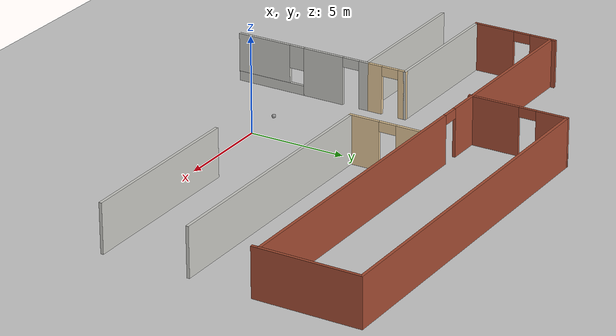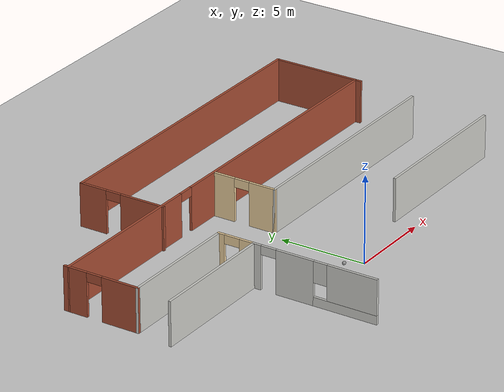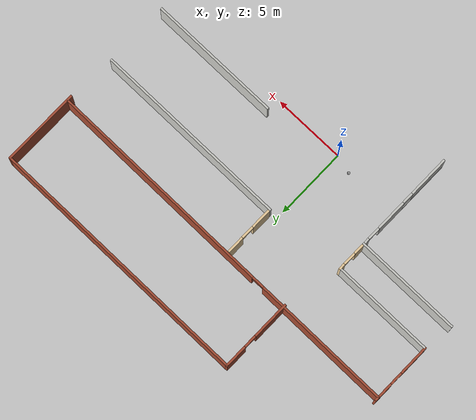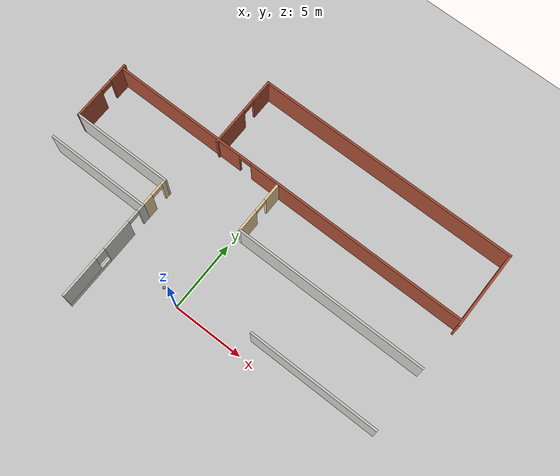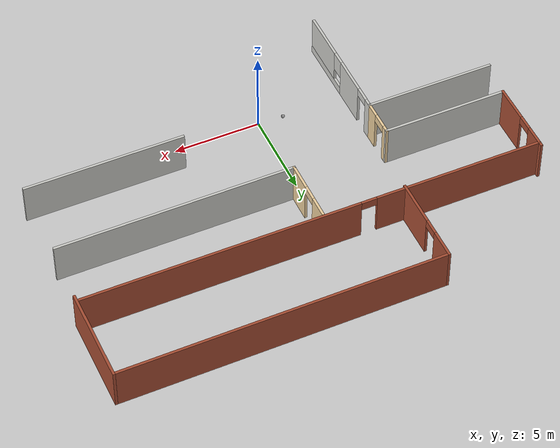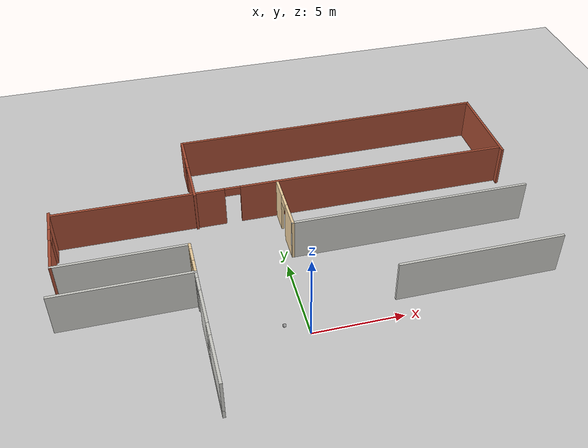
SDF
<sdf version="1.7">
 <world name="default">
  <model name="ground_plane">
   <static>1</static>
   <link name="link">
    <collision name="collision">
     <geometry><plane><normal>0 0 1</normal><size>100 100</size></plane></geometry>
     <surface><friction><ode><mu>100</mu><mu2>50</mu2></ode></friction></surface>
    </collision>
    <visual name="visual">
     <cast_shadows>0</cast_shadows>
     <geometry><plane><normal>0 0 1</normal><size>100 100</size></plane></geometry>
     <material>
      <script><uri>file://media/materials/scripts/gazebo.material</uri><name>Gazebo/Grey</name></script>
     </material>
    </visual>
   </link>
  </model>
  <model name="my_ball">
   <link name="link_0">
    <inertial>
     <mass>1</mass>
     <inertia><ixx>0.1</ixx><ixy>0</ixy><ixz>0</ixz><iyy>0.1</iyy><iyz>0</iyz><izz>0.1</izz></inertia>
    </inertial>
    <visual name="visual">
     <geometry><sphere><radius>0.1</radius></sphere></geometry>
     <material>
      <lighting>1</lighting>
      <script><uri>file://media/materials/scripts/gazebo.material</uri><name>Gazebo/Grey</name></script>
      <shader type="pixel"><normal_map>__default__</normal_map></shader>
      <ambient>1 1 1 1</ambient>
      <diffuse>1 1 1 1</diffuse>
      <specular>1 1 1 1</specular>
      <emissive>1 1 1 1</emissive>
     </material>
    </visual>
    <collision name="collision">
     <geometry><sphere><radius>0.1</radius></sphere></geometry>
     <surface>
      <friction>
       <ode><mu>1</mu><mu2>1</mu2><fdir1>0 0 0</fdir1><slip1>0</slip1><slip2>0</slip2></ode>
       <torsional>
        <coefficient>1</coefficient>
        <patch_radius>0</patch_radius>
        <surface_radius>0</surface_radius>
        <use_patch_radius>1</use_patch_radius>
        <ode><slip>0</slip></ode>
       </torsional>
      </friction>
      <bounce><restitution_coefficient>0</restitution_coefficient><threshold>1e+06</threshold></bounce>
      <contact>
       <collide_without_contact>0</collide_without_contact>
       <collide_without_contact_bitmask>1</collide_without_contact_bitmask>
       <collide_bitmask>1</collide_bitmask>
       <ode>
        <soft_cfm>0</soft_cfm>
        <soft_erp>0.2</soft_erp>
        <kp>1e+13</kp>
        <kd>1</kd>
        <max_vel>0.01</max_vel>
        <min_depth>0</min_depth>
       </ode>
       <bullet>
        <split_impulse>1</split_impulse>
        <split_impulse_penetration_threshold>-0.01</split_impulse_penetration_threshold>
        <soft_cfm>0</soft_cfm>
        <soft_erp>0.2</soft_erp>
        <kp>1e+13</kp>
        <kd>1</kd>
       </bullet>
      </contact>
     </surface>
    </collision>
   </link>
   <static>0</static>
   <pose>-1.29169 0.413741 0.5 0 -0 0</pose>
  </model>
  <model name="newworld">
   <link name="Wall_40">
    <pose>0.085373 8.57177 0 0 -0 3.13808</pose>
    <visual name="Wall_40_Visual_2">
     <pose>3.09238 0 2.25 0 -0 0</pose>
     <geometry><box><size>0.9 0.15 0.5</size></box></geometry>
     <material>
      <script><uri>file://media/materials/scripts/gazebo.material</uri><name>Gazebo/Bricks</name></script>
      <ambient>1 1 1 1</ambient>
      <shader type="pixel"/>
     </material>
     <meta><layer>0</layer></meta>
    </visual>
    <visual name="Wall_40_Visual_0">
     <pose>-5.33385 0 1.25 0 -0 0</pose>
     <geometry><box><size>15.9525 0.15 2.5</size></box></geometry>
     <material>
      <script><uri>file://media/materials/scripts/gazebo.material</uri><name>Gazebo/Bricks</name></script>
      <ambient>1 1 1 1</ambient>
      <shader type="pixel"/>
     </material>
     <meta><layer>0</layer></meta>
    </visual>
    <visual name="Wall_40_Visual_1">
     <pose>8.42623 0 1.25 0 -0 0</pose>
     <geometry><box><size>9.76771 0.15 2.5</size></box></geometry>
     <material>
      <script><uri>file://media/materials/scripts/gazebo.material</uri><name>Gazebo/Bricks</name></script>
      <ambient>1 1 1 1</ambient>
      <shader type="pixel"/>
     </material>
     <meta><layer>0</layer></meta>
    </visual>
    <collision name="Wall_40_Collision_0">
     <pose>-5.33385 0 1.25 0 -0 0</pose>
     <geometry><box><size>15.9525 0.15 2.5</size></box></geometry>
     <surface>
      <friction>
       <ode><mu>1</mu><mu2>1</mu2><fdir1>0 0 0</fdir1><slip1>0</slip1><slip2>0</slip2></ode>
       <torsional>
        <coefficient>1</coefficient>
        <patch_radius>0</patch_radius>
        <surface_radius>0</surface_radius>
        <use_patch_radius>1</use_patch_radius>
        <ode><slip>0</slip></ode>
       </torsional>
      </friction>
      <bounce><restitution_coefficient>0</restitution_coefficient><threshold>1e+06</threshold></bounce>
      <contact>
       <collide_without_contact>0</collide_without_contact>
       <collide_without_contact_bitmask>1</collide_without_contact_bitmask>
       <collide_bitmask>1</collide_bitmask>
       <ode>
        <soft_cfm>0</soft_cfm>
        <soft_erp>0.2</soft_erp>
        <kp>1e+13</kp>
        <kd>1</kd>
        <max_vel>0.01</max_vel>
        <min_depth>0</min_depth>
       </ode>
       <bullet>
        <split_impulse>1</split_impulse>
        <split_impulse_penetration_threshold>-0.01</split_impulse_penetration_threshold>
        <soft_cfm>0</soft_cfm>
        <soft_erp>0.2</soft_erp>
        <kp>1e+13</kp>
        <kd>1</kd>
       </bullet>
      </contact>
     </surface>
    </collision>
    <collision name="Wall_40_Collision_1">
     <pose>8.42623 0 1.25 0 -0 0</pose>
     <geometry><box><size>9.76771 0.15 2.5</size></box></geometry>
     <surface>
      <friction>
       <ode><mu>1</mu><mu2>1</mu2><fdir1>0 0 0</fdir1><slip1>0</slip1><slip2>0</slip2></ode>
       <torsional>
        <coefficient>1</coefficient>
        <patch_radius>0</patch_radius>
        <surface_radius>0</surface_radius>
        <use_patch_radius>1</use_patch_radius>
        <ode><slip>0</slip></ode>
       </torsional>
      </friction>
      <bounce><restitution_coefficient>0</restitution_coefficient><threshold>1e+06</threshold></bounce>
      <contact>
       <collide_without_contact>0</collide_without_contact>
       <collide_without_contact_bitmask>1</collide_without_contact_bitmask>
       <collide_bitmask>1</collide_bitmask>
       <ode>
        <soft_cfm>0</soft_cfm>
        <soft_erp>0.2</soft_erp>
        <kp>1e+13</kp>
        <kd>1</kd>
        <max_vel>0.01</max_vel>
        <min_depth>0</min_depth>
       </ode>
       <bullet>
        <split_impulse>1</split_impulse>
        <split_impulse_penetration_threshold>-0.01</split_impulse_penetration_threshold>
        <soft_cfm>0</soft_cfm>
        <soft_erp>0.2</soft_erp>
        <kp>1e+13</kp>
        <kd>1</kd>
       </bullet>
      </contact>
     </surface>
    </collision>
    <collision name="Wall_40_Collision_2">
     <pose>3.09238 0 2.25 0 -0 0</pose>
     <geometry><box><size>0.9 0.15 0.5</size></box></geometry>
     <surface>
      <friction>
       <ode><mu>1</mu><mu2>1</mu2><fdir1>0 0 0</fdir1><slip1>0</slip1><slip2>0</slip2></ode>
       <torsional>
        <coefficient>1</coefficient>
        <patch_radius>0</patch_radius>
        <surface_radius>0</surface_radius>
        <use_patch_radius>1</use_patch_radius>
        <ode><slip>0</slip></ode>
       </torsional>
      </friction>
      <bounce><restitution_coefficient>0</restitution_coefficient><threshold>1e+06</threshold></bounce>
      <contact>
       <collide_without_contact>0</collide_without_contact>
       <collide_without_contact_bitmask>1</collide_without_contact_bitmask>
       <collide_bitmask>1</collide_bitmask>
       <ode>
        <soft_cfm>0</soft_cfm>
        <soft_erp>0.2</soft_erp>
        <kp>1e+13</kp>
        <kd>1</kd>
        <max_vel>0.01</max_vel>
        <min_depth>0</min_depth>
       </ode>
       <bullet>
        <split_impulse>1</split_impulse>
        <split_impulse_penetration_threshold>-0.01</split_impulse_penetration_threshold>
        <soft_cfm>0</soft_cfm>
        <soft_erp>0.2</soft_erp>
        <kp>1e+13</kp>
        <kd>1</kd>
       </bullet>
      </contact>
     </surface>
    </collision>
   </link>
   <link name="Wall_43">
    <pose>-9.72463 2.36822 0 0 -0 0</pose>
    <visual name="Wall_43_Visual">
     <pose>0 0 1.25 0 -0 0</pose>
     <geometry><box><size>7.5 0.15 2.5</size></box></geometry>
     <material>
      <script><uri>file://media/materials/scripts/gazebo.material</uri><name>Gazebo/CeilingTiled</name></script>
      <ambient>0.996078 0.47451 0.0196078 1</ambient>
      <shader type="pixel"/>
     </material>
     <meta><layer>0</layer></meta>
    </visual>
    <collision name="Wall_43_Collision">
     <pose>0 0 1.25 0 -0 0</pose>
     <geometry><box><size>7.5 0.15 2.5</size></box></geometry>
     <surface>
      <friction>
       <ode><mu>1</mu><mu2>1</mu2><fdir1>0 0 0</fdir1><slip1>0</slip1><slip2>0</slip2></ode>
       <torsional>
        <coefficient>1</coefficient>
        <patch_radius>0</patch_radius>
        <surface_radius>0</surface_radius>
        <use_patch_radius>1</use_patch_radius>
        <ode><slip>0</slip></ode>
       </torsional>
      </friction>
      <bounce><restitution_coefficient>0</restitution_coefficient><threshold>1e+06</threshold></bounce>
      <contact>
       <collide_without_contact>0</collide_without_contact>
       <collide_without_contact_bitmask>1</collide_without_contact_bitmask>
       <collide_bitmask>1</collide_bitmask>
       <ode>
        <soft_cfm>0</soft_cfm>
        <soft_erp>0.2</soft_erp>
        <kp>1e+13</kp>
        <kd>1</kd>
        <max_vel>0.01</max_vel>
        <min_depth>0</min_depth>
       </ode>
       <bullet>
        <split_impulse>1</split_impulse>
        <split_impulse_penetration_threshold>-0.01</split_impulse_penetration_threshold>
        <soft_cfm>0</soft_cfm>
        <soft_erp>0.2</soft_erp>
        <kp>1e+13</kp>
        <kd>1</kd>
       </bullet>
      </contact>
     </surface>
    </collision>
   </link>
   <link name="Wall_44">
    <pose>-6.04963 3.41822 0 0 -0 1.5708</pose>
    <visual name="Wall_44_Visual_0">
     <pose>-0.670296 0 1.25 0 -0 0</pose>
     <geometry><box><size>0.909407 0.15 2.5</size></box></geometry>
     <material>
      <script><uri>file://media/materials/scripts/gazebo.material</uri><name>Gazebo/Grey</name></script>
      <ambient>0.921569 0.807843 0.615686 1</ambient>
      <shader type="pixel"/>
     </material>
     <meta><layer>0</layer></meta>
    </visual>
    <visual name="Wall_44_Visual_1">
     <pose>0.904704 0 1.25 0 -0 0</pose>
     <geometry><box><size>0.440593 0.15 2.5</size></box></geometry>
     <material>
      <script><uri>file://media/materials/scripts/gazebo.material</uri><name>Gazebo/Grey</name></script>
      <ambient>0.921569 0.807843 0.615686 1</ambient>
      <shader type="pixel"/>
     </material>
     <meta><layer>0</layer></meta>
    </visual>
    <visual name="Wall_44_Visual_2">
     <pose>0.234407 0 2.25 0 -0 0</pose>
     <geometry><box><size>0.9 0.15 0.5</size></box></geometry>
     <material>
      <script><uri>file://media/materials/scripts/gazebo.material</uri><name>Gazebo/Grey</name></script>
      <ambient>0.921569 0.807843 0.615686 1</ambient>
      <shader type="pixel"/>
     </material>
     <meta><layer>0</layer></meta>
    </visual>
    <collision name="Wall_44_Collision_0">
     <pose>-0.670296 0 1.25 0 -0 0</pose>
     <geometry><box><size>0.909407 0.15 2.5</size></box></geometry>
     <surface>
      <friction>
       <ode><mu>1</mu><mu2>1</mu2><fdir1>0 0 0</fdir1><slip1>0</slip1><slip2>0</slip2></ode>
       <torsional>
        <coefficient>1</coefficient>
        <patch_radius>0</patch_radius>
        <surface_radius>0</surface_radius>
        <use_patch_radius>1</use_patch_radius>
        <ode><slip>0</slip></ode>
       </torsional>
      </friction>
      <bounce><restitution_coefficient>0</restitution_coefficient><threshold>1e+06</threshold></bounce>
      <contact>
       <collide_without_contact>0</collide_without_contact>
       <collide_without_contact_bitmask>1</collide_without_contact_bitmask>
       <collide_bitmask>1</collide_bitmask>
       <ode>
        <soft_cfm>0</soft_cfm>
        <soft_erp>0.2</soft_erp>
        <kp>1e+13</kp>
        <kd>1</kd>
        <max_vel>0.01</max_vel>
        <min_depth>0</min_depth>
       </ode>
       <bullet>
        <split_impulse>1</split_impulse>
        <split_impulse_penetration_threshold>-0.01</split_impulse_penetration_threshold>
        <soft_cfm>0</soft_cfm>
        <soft_erp>0.2</soft_erp>
        <kp>1e+13</kp>
        <kd>1</kd>
       </bullet>
      </contact>
     </surface>
    </collision>
    <collision name="Wall_44_Collision_2">
     <pose>0.234407 0 2.25 0 -0 0</pose>
     <geometry><box><size>0.9 0.15 0.5</size></box></geometry>
     <surface>
      <friction>
       <ode><mu>1</mu><mu2>1</mu2><fdir1>0 0 0</fdir1><slip1>0</slip1><slip2>0</slip2></ode>
       <torsional>
        <coefficient>1</coefficient>
        <patch_radius>0</patch_radius>
        <surface_radius>0</surface_radius>
        <use_patch_radius>1</use_patch_radius>
        <ode><slip>0</slip></ode>
       </torsional>
      </friction>
      <bounce><restitution_coefficient>0</restitution_coefficient><threshold>1e+06</threshold></bounce>
      <contact>
       <collide_without_contact>0</collide_without_contact>
       <collide_without_contact_bitmask>1</collide_without_contact_bitmask>
       <collide_bitmask>1</collide_bitmask>
       <ode>
        <soft_cfm>0</soft_cfm>
        <soft_erp>0.2</soft_erp>
        <kp>1e+13</kp>
        <kd>1</kd>
        <max_vel>0.01</max_vel>
        <min_depth>0</min_depth>
       </ode>
       <bullet>
        <split_impulse>1</split_impulse>
        <split_impulse_penetration_threshold>-0.01</split_impulse_penetration_threshold>
        <soft_cfm>0</soft_cfm>
        <soft_erp>0.2</soft_erp>
        <kp>1e+13</kp>
        <kd>1</kd>
       </bullet>
      </contact>
     </surface>
    </collision>
    <collision name="Wall_44_Collision_1">
     <pose>0.904704 0 1.25 0 -0 0</pose>
     <geometry><box><size>0.440593 0.15 2.5</size></box></geometry>
     <surface>
      <friction>
       <ode><mu>1</mu><mu2>1</mu2><fdir1>0 0 0</fdir1><slip1>0</slip1><slip2>0</slip2></ode>
       <torsional>
        <coefficient>1</coefficient>
        <patch_radius>0</patch_radius>
        <surface_radius>0</surface_radius>
        <use_patch_radius>1</use_patch_radius>
        <ode><slip>0</slip></ode>
       </torsional>
      </friction>
      <bounce><restitution_coefficient>0</restitution_coefficient><threshold>1e+06</threshold></bounce>
      <contact>
       <collide_without_contact>0</collide_without_contact>
       <collide_without_contact_bitmask>1</collide_without_contact_bitmask>
       <collide_bitmask>1</collide_bitmask>
       <ode>
        <soft_cfm>0</soft_cfm>
        <soft_erp>0.2</soft_erp>
        <kp>1e+13</kp>
        <kd>1</kd>
        <max_vel>0.01</max_vel>
        <min_depth>0</min_depth>
       </ode>
       <bullet>
        <split_impulse>1</split_impulse>
        <split_impulse_penetration_threshold>-0.01</split_impulse_penetration_threshold>
        <soft_cfm>0</soft_cfm>
        <soft_erp>0.2</soft_erp>
        <kp>1e+13</kp>
        <kd>1</kd>
       </bullet>
      </contact>
     </surface>
    </collision>
   </link>
   <link name="Wall_45">
    <pose>-9.59963 4.46822 0 0 -0 3.14159</pose>
    <visual name="Wall_45_Visual">
     <pose>0 0 1.25 0 -0 0</pose>
     <geometry><box><size>7.25 0.15 2.5</size></box></geometry>
     <material>
      <script><uri>file://media/materials/scripts/gazebo.material</uri><name>Gazebo/CeilingTiled</name></script>
      <ambient>0.921569 0.807843 0.615686 1</ambient>
      <shader type="pixel"/>
     </material>
     <meta><layer>0</layer></meta>
    </visual>
    <collision name="Wall_45_Collision">
     <pose>0 0 1.25 0 -0 0</pose>
     <geometry><box><size>7.25 0.15 2.5</size></box></geometry>
     <surface>
      <friction>
       <ode><mu>1</mu><mu2>1</mu2><fdir1>0 0 0</fdir1><slip1>0</slip1><slip2>0</slip2></ode>
       <torsional>
        <coefficient>1</coefficient>
        <patch_radius>0</patch_radius>
        <surface_radius>0</surface_radius>
        <use_patch_radius>1</use_patch_radius>
        <ode><slip>0</slip></ode>
       </torsional>
      </friction>
      <bounce><restitution_coefficient>0</restitution_coefficient><threshold>1e+06</threshold></bounce>
      <contact>
       <collide_without_contact>0</collide_without_contact>
       <collide_without_contact_bitmask>1</collide_without_contact_bitmask>
       <collide_bitmask>1</collide_bitmask>
       <ode>
        <soft_cfm>0</soft_cfm>
        <soft_erp>0.2</soft_erp>
        <kp>1e+13</kp>
        <kd>1</kd>
        <max_vel>0.01</max_vel>
        <min_depth>0</min_depth>
       </ode>
       <bullet>
        <split_impulse>1</split_impulse>
        <split_impulse_penetration_threshold>-0.01</split_impulse_penetration_threshold>
        <soft_cfm>0</soft_cfm>
        <soft_erp>0.2</soft_erp>
        <kp>1e+13</kp>
        <kd>1</kd>
       </bullet>
      </contact>
     </surface>
    </collision>
   </link>
   <link name="Wall_46">
    <pose>-13.1496 6.64322 0 0 -0 1.5708</pose>
    <visual name="Wall_46_Visual_1">
     <pose>1.54605 0 1.25 0 -0 0</pose>
     <geometry><box><size>1.4079 0.15 2.5</size></box></geometry>
     <material>
      <script><uri>file://media/materials/scripts/gazebo.material</uri><name>Gazebo/Bricks</name></script>
      <ambient>1 1 1 1</ambient>
      <shader type="pixel"/>
     </material>
     <meta><layer>0</layer></meta>
    </visual>
    <visual name="Wall_46_Visual_0">
     <pose>-1.15395 0 1.25 0 -0 0</pose>
     <geometry><box><size>2.1921 0.15 2.5</size></box></geometry>
     <material>
      <script><uri>file://media/materials/scripts/gazebo.material</uri><name>Gazebo/Bricks</name></script>
      <ambient>1 1 1 1</ambient>
      <shader type="pixel"/>
     </material>
     <meta><layer>0</layer></meta>
    </visual>
    <visual name="Wall_46_Visual_2">
     <pose>0.392097 0 2.25 0 -0 0</pose>
     <geometry><box><size>0.9 0.15 0.5</size></box></geometry>
     <material>
      <script><uri>file://media/materials/scripts/gazebo.material</uri><name>Gazebo/Bricks</name></script>
      <ambient>1 1 1 1</ambient>
      <shader type="pixel"/>
     </material>
     <meta><layer>0</layer></meta>
    </visual>
    <collision name="Wall_46_Collision_2">
     <pose>0.392097 0 2.25 0 -0 0</pose>
     <geometry><box><size>0.9 0.15 0.5</size></box></geometry>
     <surface>
      <friction>
       <ode><mu>1</mu><mu2>1</mu2><fdir1>0 0 0</fdir1><slip1>0</slip1><slip2>0</slip2></ode>
       <torsional>
        <coefficient>1</coefficient>
        <patch_radius>0</patch_radius>
        <surface_radius>0</surface_radius>
        <use_patch_radius>1</use_patch_radius>
        <ode><slip>0</slip></ode>
       </torsional>
      </friction>
      <bounce><restitution_coefficient>0</restitution_coefficient><threshold>1e+06</threshold></bounce>
      <contact>
       <collide_without_contact>0</collide_without_contact>
       <collide_without_contact_bitmask>1</collide_without_contact_bitmask>
       <collide_bitmask>1</collide_bitmask>
       <ode>
        <soft_cfm>0</soft_cfm>
        <soft_erp>0.2</soft_erp>
        <kp>1e+13</kp>
        <kd>1</kd>
        <max_vel>0.01</max_vel>
        <min_depth>0</min_depth>
       </ode>
       <bullet>
        <split_impulse>1</split_impulse>
        <split_impulse_penetration_threshold>-0.01</split_impulse_penetration_threshold>
        <soft_cfm>0</soft_cfm>
        <soft_erp>0.2</soft_erp>
        <kp>1e+13</kp>
        <kd>1</kd>
       </bullet>
      </contact>
     </surface>
    </collision>
    <collision name="Wall_46_Collision_0">
     <pose>-1.15395 0 1.25 0 -0 0</pose>
     <geometry><box><size>2.1921 0.15 2.5</size></box></geometry>
     <surface>
      <friction>
       <ode><mu>1</mu><mu2>1</mu2><fdir1>0 0 0</fdir1><slip1>0</slip1><slip2>0</slip2></ode>
       <torsional>
        <coefficient>1</coefficient>
        <patch_radius>0</patch_radius>
        <surface_radius>0</surface_radius>
        <use_patch_radius>1</use_patch_radius>
        <ode><slip>0</slip></ode>
       </torsional>
      </friction>
      <bounce><restitution_coefficient>0</restitution_coefficient><threshold>1e+06</threshold></bounce>
      <contact>
       <collide_without_contact>0</collide_without_contact>
       <collide_without_contact_bitmask>1</collide_without_contact_bitmask>
       <collide_bitmask>1</collide_bitmask>
       <ode>
        <soft_cfm>0</soft_cfm>
        <soft_erp>0.2</soft_erp>
        <kp>1e+13</kp>
        <kd>1</kd>
        <max_vel>0.01</max_vel>
        <min_depth>0</min_depth>
       </ode>
       <bullet>
        <split_impulse>1</split_impulse>
        <split_impulse_penetration_threshold>-0.01</split_impulse_penetration_threshold>
        <soft_cfm>0</soft_cfm>
        <soft_erp>0.2</soft_erp>
        <kp>1e+13</kp>
        <kd>1</kd>
       </bullet>
      </contact>
     </surface>
    </collision>
    <collision name="Wall_46_Collision_1">
     <pose>1.54605 0 1.25 0 -0 0</pose>
     <geometry><box><size>1.4079 0.15 2.5</size></box></geometry>
     <surface>
      <friction>
       <ode><mu>1</mu><mu2>1</mu2><fdir1>0 0 0</fdir1><slip1>0</slip1><slip2>0</slip2></ode>
       <torsional>
        <coefficient>1</coefficient>
        <patch_radius>0</patch_radius>
        <surface_radius>0</surface_radius>
        <use_patch_radius>1</use_patch_radius>
        <ode><slip>0</slip></ode>
       </torsional>
      </friction>
      <bounce><restitution_coefficient>0</restitution_coefficient><threshold>1e+06</threshold></bounce>
      <contact>
       <collide_without_contact>0</collide_without_contact>
       <collide_without_contact_bitmask>1</collide_without_contact_bitmask>
       <collide_bitmask>1</collide_bitmask>
       <ode>
        <soft_cfm>0</soft_cfm>
        <soft_erp>0.2</soft_erp>
        <kp>1e+13</kp>
        <kd>1</kd>
        <max_vel>0.01</max_vel>
        <min_depth>0</min_depth>
       </ode>
       <bullet>
        <split_impulse>1</split_impulse>
        <split_impulse_penetration_threshold>-0.01</split_impulse_penetration_threshold>
        <soft_cfm>0</soft_cfm>
        <soft_erp>0.2</soft_erp>
        <kp>1e+13</kp>
        <kd>1</kd>
       </bullet>
      </contact>
     </surface>
    </collision>
   </link>
   <link name="Wall_49">
    <pose>8.66037 0.299991 0 0 -0 0</pose>
    <visual name="Wall_49_Visual">
     <pose>0 0 1.25 0 -0 0</pose>
     <geometry><box><size>9.25 0.15 2.5</size></box></geometry>
     <material>
      <script><uri>file://media/materials/scripts/gazebo.material</uri><name>Gazebo/CeilingTiled</name></script>
      <ambient>0.435294 0.796078 0.67451 1</ambient>
      <shader type="pixel"/>
     </material>
     <meta><layer>0</layer></meta>
    </visual>
    <collision name="Wall_49_Collision">
     <pose>0 0 1.25 0 -0 0</pose>
     <geometry><box><size>9.25 0.15 2.5</size></box></geometry>
     <surface>
      <friction>
       <ode><mu>1</mu><mu2>1</mu2><fdir1>0 0 0</fdir1><slip1>0</slip1><slip2>0</slip2></ode>
       <torsional>
        <coefficient>1</coefficient>
        <patch_radius>0</patch_radius>
        <surface_radius>0</surface_radius>
        <use_patch_radius>1</use_patch_radius>
        <ode><slip>0</slip></ode>
       </torsional>
      </friction>
      <bounce><restitution_coefficient>0</restitution_coefficient><threshold>1e+06</threshold></bounce>
      <contact>
       <collide_without_contact>0</collide_without_contact>
       <collide_without_contact_bitmask>1</collide_without_contact_bitmask>
       <collide_bitmask>1</collide_bitmask>
       <ode>
        <soft_cfm>0</soft_cfm>
        <soft_erp>0.2</soft_erp>
        <kp>1e+13</kp>
        <kd>1</kd>
        <max_vel>0.01</max_vel>
        <min_depth>0</min_depth>
       </ode>
       <bullet>
        <split_impulse>1</split_impulse>
        <split_impulse_penetration_threshold>-0.01</split_impulse_penetration_threshold>
        <soft_cfm>0</soft_cfm>
        <soft_erp>0.2</soft_erp>
        <kp>1e+13</kp>
        <kd>1</kd>
       </bullet>
      </contact>
     </surface>
    </collision>
   </link>
   <link name="Wall_54">
    <pose>-6.04963 -1.22778 0 0 0 -1.5708</pose>
    <visual name="Wall_54_Visual_5">
     <pose>-2.69956 0 2.25 0 -0 0</pose>
     <geometry><box><size>0.9 0.15 0.5</size></box></geometry>
     <material>
      <script><uri>file://media/materials/scripts/gazebo.material</uri><name>Gazebo/CeilingTiled</name></script>
      <ambient>0.996078 0.47451 0.0196078 1</ambient>
      <shader type="pixel"/>
     </material>
     <meta><layer>0</layer></meta>
    </visual>
    <visual name="Wall_54_Visual_4">
     <pose>0.356693 0 1.9 0 -0 0</pose>
     <geometry><box><size>0.8 0.15 1.2</size></box></geometry>
     <material>
      <script><uri>file://media/materials/scripts/gazebo.material</uri><name>Gazebo/CeilingTiled</name></script>
      <ambient>0.996078 0.47451 0.0196078 1</ambient>
      <shader type="pixel"/>
     </material>
     <meta><layer>0</layer></meta>
    </visual>
    <visual name="Wall_54_Visual_0">
     <pose>-3.41028 0 1.25 0 -0 0</pose>
     <geometry><box><size>0.521445 0.15 2.5</size></box></geometry>
     <material>
      <script><uri>file://media/materials/scripts/gazebo.material</uri><name>Gazebo/CeilingTiled</name></script>
      <ambient>0.996078 0.47451 0.0196078 1</ambient>
      <shader type="pixel"/>
     </material>
     <meta><layer>0</layer></meta>
    </visual>
    <visual name="Wall_54_Visual_3">
     <pose>2.21385 0 1.5 0 -0 0</pose>
     <geometry><box><size>2.91431 0.15 2</size></box></geometry>
     <material>
      <script><uri>file://media/materials/scripts/gazebo.material</uri><name>Gazebo/CeilingTiled</name></script>
      <ambient>0.996078 0.47451 0.0196078 1</ambient>
      <shader type="pixel"/>
     </material>
     <meta><layer>0</layer></meta>
    </visual>
    <visual name="Wall_54_Visual_1">
     <pose>-1.14643 0 1.25 0 -0 0</pose>
     <geometry><box><size>2.20625 0.15 2.5</size></box></geometry>
     <material>
      <script><uri>file://media/materials/scripts/gazebo.material</uri><name>Gazebo/CeilingTiled</name></script>
      <ambient>0.996078 0.47451 0.0196078 1</ambient>
      <shader type="pixel"/>
     </material>
     <meta><layer>0</layer></meta>
    </visual>
    <visual name="Wall_54_Visual_2">
     <pose>1.81385 0 0.25 0 -0 0</pose>
     <geometry><box><size>3.71431 0.15 0.5</size></box></geometry>
     <material>
      <script><uri>file://media/materials/scripts/gazebo.material</uri><name>Gazebo/CeilingTiled</name></script>
      <ambient>0.996078 0.47451 0.0196078 1</ambient>
      <shader type="pixel"/>
     </material>
     <meta><layer>0</layer></meta>
    </visual>
    <collision name="Wall_54_Collision_3">
     <pose>2.21385 0 1.5 0 -0 0</pose>
     <geometry><box><size>2.91431 0.15 2</size></box></geometry>
     <surface>
      <friction>
       <ode><mu>1</mu><mu2>1</mu2><fdir1>0 0 0</fdir1><slip1>0</slip1><slip2>0</slip2></ode>
       <torsional>
        <coefficient>1</coefficient>
        <patch_radius>0</patch_radius>
        <surface_radius>0</surface_radius>
        <use_patch_radius>1</use_patch_radius>
        <ode><slip>0</slip></ode>
       </torsional>
      </friction>
      <bounce><restitution_coefficient>0</restitution_coefficient><threshold>1e+06</threshold></bounce>
      <contact>
       <collide_without_contact>0</collide_without_contact>
       <collide_without_contact_bitmask>1</collide_without_contact_bitmask>
       <collide_bitmask>1</collide_bitmask>
       <ode>
        <soft_cfm>0</soft_cfm>
        <soft_erp>0.2</soft_erp>
        <kp>1e+13</kp>
        <kd>1</kd>
        <max_vel>0.01</max_vel>
        <min_depth>0</min_depth>
       </ode>
       <bullet>
        <split_impulse>1</split_impulse>
        <split_impulse_penetration_threshold>-0.01</split_impulse_penetration_threshold>
        <soft_cfm>0</soft_cfm>
        <soft_erp>0.2</soft_erp>
        <kp>1e+13</kp>
        <kd>1</kd>
       </bullet>
      </contact>
     </surface>
    </collision>
    <collision name="Wall_54_Collision_5">
     <pose>-2.69956 0 2.25 0 -0 0</pose>
     <geometry><box><size>0.9 0.15 0.5</size></box></geometry>
     <surface>
      <friction>
       <ode><mu>1</mu><mu2>1</mu2><fdir1>0 0 0</fdir1><slip1>0</slip1><slip2>0</slip2></ode>
       <torsional>
        <coefficient>1</coefficient>
        <patch_radius>0</patch_radius>
        <surface_radius>0</surface_radius>
        <use_patch_radius>1</use_patch_radius>
        <ode><slip>0</slip></ode>
       </torsional>
      </friction>
      <bounce><restitution_coefficient>0</restitution_coefficient><threshold>1e+06</threshold></bounce>
      <contact>
       <collide_without_contact>0</collide_without_contact>
       <collide_without_contact_bitmask>1</collide_without_contact_bitmask>
       <collide_bitmask>1</collide_bitmask>
       <ode>
        <soft_cfm>0</soft_cfm>
        <soft_erp>0.2</soft_erp>
        <kp>1e+13</kp>
        <kd>1</kd>
        <max_vel>0.01</max_vel>
        <min_depth>0</min_depth>
       </ode>
       <bullet>
        <split_impulse>1</split_impulse>
        <split_impulse_penetration_threshold>-0.01</split_impulse_penetration_threshold>
        <soft_cfm>0</soft_cfm>
        <soft_erp>0.2</soft_erp>
        <kp>1e+13</kp>
        <kd>1</kd>
       </bullet>
      </contact>
     </surface>
    </collision>
    <collision name="Wall_54_Collision_2">
     <pose>1.81385 0 0.25 0 -0 0</pose>
     <geometry><box><size>3.71431 0.15 0.5</size></box></geometry>
     <surface>
      <friction>
       <ode><mu>1</mu><mu2>1</mu2><fdir1>0 0 0</fdir1><slip1>0</slip1><slip2>0</slip2></ode>
       <torsional>
        <coefficient>1</coefficient>
        <patch_radius>0</patch_radius>
        <surface_radius>0</surface_radius>
        <use_patch_radius>1</use_patch_radius>
        <ode><slip>0</slip></ode>
       </torsional>
      </friction>
      <bounce><restitution_coefficient>0</restitution_coefficient><threshold>1e+06</threshold></bounce>
      <contact>
       <collide_without_contact>0</collide_without_contact>
       <collide_without_contact_bitmask>1</collide_without_contact_bitmask>
       <collide_bitmask>1</collide_bitmask>
       <ode>
        <soft_cfm>0</soft_cfm>
        <soft_erp>0.2</soft_erp>
        <kp>1e+13</kp>
        <kd>1</kd>
        <max_vel>0.01</max_vel>
        <min_depth>0</min_depth>
       </ode>
       <bullet>
        <split_impulse>1</split_impulse>
        <split_impulse_penetration_threshold>-0.01</split_impulse_penetration_threshold>
        <soft_cfm>0</soft_cfm>
        <soft_erp>0.2</soft_erp>
        <kp>1e+13</kp>
        <kd>1</kd>
       </bullet>
      </contact>
     </surface>
    </collision>
    <collision name="Wall_54_Collision_4">
     <pose>0.356693 0 1.9 0 -0 0</pose>
     <geometry><box><size>0.8 0.15 1.2</size></box></geometry>
     <surface>
      <friction>
       <ode><mu>1</mu><mu2>1</mu2><fdir1>0 0 0</fdir1><slip1>0</slip1><slip2>0</slip2></ode>
       <torsional>
        <coefficient>1</coefficient>
        <patch_radius>0</patch_radius>
        <surface_radius>0</surface_radius>
        <use_patch_radius>1</use_patch_radius>
        <ode><slip>0</slip></ode>
       </torsional>
      </friction>
      <bounce><restitution_coefficient>0</restitution_coefficient><threshold>1e+06</threshold></bounce>
      <contact>
       <collide_without_contact>0</collide_without_contact>
       <collide_without_contact_bitmask>1</collide_without_contact_bitmask>
       <collide_bitmask>1</collide_bitmask>
       <ode>
        <soft_cfm>0</soft_cfm>
        <soft_erp>0.2</soft_erp>
        <kp>1e+13</kp>
        <kd>1</kd>
        <max_vel>0.01</max_vel>
        <min_depth>0</min_depth>
       </ode>
       <bullet>
        <split_impulse>1</split_impulse>
        <split_impulse_penetration_threshold>-0.01</split_impulse_penetration_threshold>
        <soft_cfm>0</soft_cfm>
        <soft_erp>0.2</soft_erp>
        <kp>1e+13</kp>
        <kd>1</kd>
       </bullet>
      </contact>
     </surface>
    </collision>
    <collision name="Wall_54_Collision_1">
     <pose>-1.14643 0 1.25 0 -0 0</pose>
     <geometry><box><size>2.20625 0.15 2.5</size></box></geometry>
     <surface>
      <friction>
       <ode><mu>1</mu><mu2>1</mu2><fdir1>0 0 0</fdir1><slip1>0</slip1><slip2>0</slip2></ode>
       <torsional>
        <coefficient>1</coefficient>
        <patch_radius>0</patch_radius>
        <surface_radius>0</surface_radius>
        <use_patch_radius>1</use_patch_radius>
        <ode><slip>0</slip></ode>
       </torsional>
      </friction>
      <bounce><restitution_coefficient>0</restitution_coefficient><threshold>1e+06</threshold></bounce>
      <contact>
       <collide_without_contact>0</collide_without_contact>
       <collide_without_contact_bitmask>1</collide_without_contact_bitmask>
       <collide_bitmask>1</collide_bitmask>
       <ode>
        <soft_cfm>0</soft_cfm>
        <soft_erp>0.2</soft_erp>
        <kp>1e+13</kp>
        <kd>1</kd>
        <max_vel>0.01</max_vel>
        <min_depth>0</min_depth>
       </ode>
       <bullet>
        <split_impulse>1</split_impulse>
        <split_impulse_penetration_threshold>-0.01</split_impulse_penetration_threshold>
        <soft_cfm>0</soft_cfm>
        <soft_erp>0.2</soft_erp>
        <kp>1e+13</kp>
        <kd>1</kd>
       </bullet>
      </contact>
     </surface>
    </collision>
    <collision name="Wall_54_Collision_0">
     <pose>-3.41028 0 1.25 0 -0 0</pose>
     <geometry><box><size>0.521445 0.15 2.5</size></box></geometry>
     <surface>
      <friction>
       <ode><mu>1</mu><mu2>1</mu2><fdir1>0 0 0</fdir1><slip1>0</slip1><slip2>0</slip2></ode>
       <torsional>
        <coefficient>1</coefficient>
        <patch_radius>0</patch_radius>
        <surface_radius>0</surface_radius>
        <use_patch_radius>1</use_patch_radius>
        <ode><slip>0</slip></ode>
       </torsional>
      </friction>
      <bounce><restitution_coefficient>0</restitution_coefficient><threshold>1e+06</threshold></bounce>
      <contact>
       <collide_without_contact>0</collide_without_contact>
       <collide_without_contact_bitmask>1</collide_without_contact_bitmask>
       <collide_bitmask>1</collide_bitmask>
       <ode>
        <soft_cfm>0</soft_cfm>
        <soft_erp>0.2</soft_erp>
        <kp>1e+13</kp>
        <kd>1</kd>
        <max_vel>0.01</max_vel>
        <min_depth>0</min_depth>
       </ode>
       <bullet>
        <split_impulse>1</split_impulse>
        <split_impulse_penetration_threshold>-0.01</split_impulse_penetration_threshold>
        <soft_cfm>0</soft_cfm>
        <soft_erp>0.2</soft_erp>
        <kp>1e+13</kp>
        <kd>1</kd>
       </bullet>
      </contact>
     </surface>
    </collision>
   </link>
   <link name="Wall_57">
    <pose>6.39529 4.81032 0 0 -0 3.14159</pose>
    <visual name="Wall_57_Visual">
     <pose>0 0 1.25 0 -0 0</pose>
     <geometry><box><size>13.75 0.15 2.5</size></box></geometry>
     <material>
      <script><uri>file://media/materials/scripts/gazebo.material</uri><name>Gazebo/CeilingTiled</name></script>
      <ambient>0.921569 0.807843 0.615686 1</ambient>
      <shader type="pixel"/>
     </material>
     <meta><layer>0</layer></meta>
    </visual>
    <collision name="Wall_57_Collision">
     <pose>0 0 1.25 0 -0 0</pose>
     <geometry><box><size>13.75 0.15 2.5</size></box></geometry>
     <surface>
      <friction>
       <ode><mu>1</mu><mu2>1</mu2><fdir1>0 0 0</fdir1><slip1>0</slip1><slip2>0</slip2></ode>
       <torsional>
        <coefficient>1</coefficient>
        <patch_radius>0</patch_radius>
        <surface_radius>0</surface_radius>
        <use_patch_radius>1</use_patch_radius>
        <ode><slip>0</slip></ode>
       </torsional>
      </friction>
      <bounce><restitution_coefficient>0</restitution_coefficient><threshold>1e+06</threshold></bounce>
      <contact>
       <collide_without_contact>0</collide_without_contact>
       <collide_without_contact_bitmask>1</collide_without_contact_bitmask>
       <collide_bitmask>1</collide_bitmask>
       <ode>
        <soft_cfm>0</soft_cfm>
        <soft_erp>0.2</soft_erp>
        <kp>1e+13</kp>
        <kd>1</kd>
        <max_vel>0.01</max_vel>
        <min_depth>0</min_depth>
       </ode>
       <bullet>
        <split_impulse>1</split_impulse>
        <split_impulse_penetration_threshold>-0.01</split_impulse_penetration_threshold>
        <soft_cfm>0</soft_cfm>
        <soft_erp>0.2</soft_erp>
        <kp>1e+13</kp>
        <kd>1</kd>
       </bullet>
      </contact>
     </surface>
    </collision>
   </link>
   <link name="Wall_58">
    <pose>-0.404713 6.61032 0 0 -0 1.5708</pose>
    <visual name="Wall_58_Visual_2">
     <pose>0.183638 0 2.25 0 -0 0</pose>
     <geometry><box><size>0.9 0.15 0.5</size></box></geometry>
     <material>
      <script><uri>file://media/materials/scripts/gazebo.material</uri><name>Gazebo/Grey</name></script>
      <ambient>0.921569 0.807843 0.615686 1</ambient>
      <shader type="pixel"/>
     </material>
     <meta><layer>0</layer></meta>
    </visual>
    <visual name="Wall_58_Visual_0">
     <pose>-1.07068 0 1.25 0 -0 0</pose>
     <geometry><box><size>1.60864 0.15 2.5</size></box></geometry>
     <material>
      <script><uri>file://media/materials/scripts/gazebo.material</uri><name>Gazebo/Grey</name></script>
      <ambient>0.921569 0.807843 0.615686 1</ambient>
      <shader type="pixel"/>
     </material>
     <meta><layer>0</layer></meta>
    </visual>
    <visual name="Wall_58_Visual_1">
     <pose>1.25432 0 1.25 0 -0 0</pose>
     <geometry><box><size>1.24136 0.15 2.5</size></box></geometry>
     <material>
      <script><uri>file://media/materials/scripts/gazebo.material</uri><name>Gazebo/Grey</name></script>
      <ambient>0.921569 0.807843 0.615686 1</ambient>
      <shader type="pixel"/>
     </material>
     <meta><layer>0</layer></meta>
    </visual>
    <collision name="Wall_58_Collision_0">
     <pose>-1.07068 0 1.25 0 -0 0</pose>
     <geometry><box><size>1.60864 0.15 2.5</size></box></geometry>
     <surface>
      <friction>
       <ode><mu>1</mu><mu2>1</mu2><fdir1>0 0 0</fdir1><slip1>0</slip1><slip2>0</slip2></ode>
       <torsional>
        <coefficient>1</coefficient>
        <patch_radius>0</patch_radius>
        <surface_radius>0</surface_radius>
        <use_patch_radius>1</use_patch_radius>
        <ode><slip>0</slip></ode>
       </torsional>
      </friction>
      <bounce><restitution_coefficient>0</restitution_coefficient><threshold>1e+06</threshold></bounce>
      <contact>
       <collide_without_contact>0</collide_without_contact>
       <collide_without_contact_bitmask>1</collide_without_contact_bitmask>
       <collide_bitmask>1</collide_bitmask>
       <ode>
        <soft_cfm>0</soft_cfm>
        <soft_erp>0.2</soft_erp>
        <kp>1e+13</kp>
        <kd>1</kd>
        <max_vel>0.01</max_vel>
        <min_depth>0</min_depth>
       </ode>
       <bullet>
        <split_impulse>1</split_impulse>
        <split_impulse_penetration_threshold>-0.01</split_impulse_penetration_threshold>
        <soft_cfm>0</soft_cfm>
        <soft_erp>0.2</soft_erp>
        <kp>1e+13</kp>
        <kd>1</kd>
       </bullet>
      </contact>
     </surface>
    </collision>
    <collision name="Wall_58_Collision_1">
     <pose>1.25432 0 1.25 0 -0 0</pose>
     <geometry><box><size>1.24136 0.15 2.5</size></box></geometry>
     <surface>
      <friction>
       <ode><mu>1</mu><mu2>1</mu2><fdir1>0 0 0</fdir1><slip1>0</slip1><slip2>0</slip2></ode>
       <torsional>
        <coefficient>1</coefficient>
        <patch_radius>0</patch_radius>
        <surface_radius>0</surface_radius>
        <use_patch_radius>1</use_patch_radius>
        <ode><slip>0</slip></ode>
       </torsional>
      </friction>
      <bounce><restitution_coefficient>0</restitution_coefficient><threshold>1e+06</threshold></bounce>
      <contact>
       <collide_without_contact>0</collide_without_contact>
       <collide_without_contact_bitmask>1</collide_without_contact_bitmask>
       <collide_bitmask>1</collide_bitmask>
       <ode>
        <soft_cfm>0</soft_cfm>
        <soft_erp>0.2</soft_erp>
        <kp>1e+13</kp>
        <kd>1</kd>
        <max_vel>0.01</max_vel>
        <min_depth>0</min_depth>
       </ode>
       <bullet>
        <split_impulse>1</split_impulse>
        <split_impulse_penetration_threshold>-0.01</split_impulse_penetration_threshold>
        <soft_cfm>0</soft_cfm>
        <soft_erp>0.2</soft_erp>
        <kp>1e+13</kp>
        <kd>1</kd>
       </bullet>
      </contact>
     </surface>
    </collision>
    <collision name="Wall_58_Collision_2">
     <pose>0.183638 0 2.25 0 -0 0</pose>
     <geometry><box><size>0.9 0.15 0.5</size></box></geometry>
     <surface>
      <friction>
       <ode><mu>1</mu><mu2>1</mu2><fdir1>0 0 0</fdir1><slip1>0</slip1><slip2>0</slip2></ode>
       <torsional>
        <coefficient>1</coefficient>
        <patch_radius>0</patch_radius>
        <surface_radius>0</surface_radius>
        <use_patch_radius>1</use_patch_radius>
        <ode><slip>0</slip></ode>
       </torsional>
      </friction>
      <bounce><restitution_coefficient>0</restitution_coefficient><threshold>1e+06</threshold></bounce>
      <contact>
       <collide_without_contact>0</collide_without_contact>
       <collide_without_contact_bitmask>1</collide_without_contact_bitmask>
       <collide_bitmask>1</collide_bitmask>
       <ode>
        <soft_cfm>0</soft_cfm>
        <soft_erp>0.2</soft_erp>
        <kp>1e+13</kp>
        <kd>1</kd>
        <max_vel>0.01</max_vel>
        <min_depth>0</min_depth>
       </ode>
       <bullet>
        <split_impulse>1</split_impulse>
        <split_impulse_penetration_threshold>-0.01</split_impulse_penetration_threshold>
        <soft_cfm>0</soft_cfm>
        <soft_erp>0.2</soft_erp>
        <kp>1e+13</kp>
        <kd>1</kd>
       </bullet>
      </contact>
     </surface>
    </collision>
   </link>
   <link name="Wall_63">
    <pose>-5.17255 11.0249 0 0 -0 1.5708</pose>
    <visual name="Wall_63_Visual_0">
     <pose>-1.27959 0 1.25 0 -0 0</pose>
     <geometry><box><size>2.69081 0.15 2.5</size></box></geometry>
     <material>
      <script><uri>file://media/materials/scripts/gazebo.material</uri><name>Gazebo/Bricks</name></script>
      <ambient>1 1 1 1</ambient>
      <shader type="pixel"/>
     </material>
     <meta><layer>0</layer></meta>
    </visual>
    <visual name="Wall_63_Visual_2">
     <pose>0.515814 0 2.25 0 -0 0</pose>
     <geometry><box><size>0.9 0.15 0.5</size></box></geometry>
     <material>
      <script><uri>file://media/materials/scripts/gazebo.material</uri><name>Gazebo/Bricks</name></script>
      <ambient>1 1 1 1</ambient>
      <shader type="pixel"/>
     </material>
     <meta><layer>0</layer></meta>
    </visual>
    <visual name="Wall_63_Visual_1">
     <pose>1.79541 0 1.25 0 -0 0</pose>
     <geometry><box><size>1.65919 0.15 2.5</size></box></geometry>
     <material>
      <script><uri>file://media/materials/scripts/gazebo.material</uri><name>Gazebo/Bricks</name></script>
      <ambient>1 1 1 1</ambient>
      <shader type="pixel"/>
     </material>
     <meta><layer>0</layer></meta>
    </visual>
    <collision name="Wall_63_Collision_1">
     <pose>1.79541 0 1.25 0 -0 0</pose>
     <geometry><box><size>1.65919 0.15 2.5</size></box></geometry>
     <surface>
      <friction>
       <ode><mu>1</mu><mu2>1</mu2><fdir1>0 0 0</fdir1><slip1>0</slip1><slip2>0</slip2></ode>
       <torsional>
        <coefficient>1</coefficient>
        <patch_radius>0</patch_radius>
        <surface_radius>0</surface_radius>
        <use_patch_radius>1</use_patch_radius>
        <ode><slip>0</slip></ode>
       </torsional>
      </friction>
      <bounce><restitution_coefficient>0</restitution_coefficient><threshold>1e+06</threshold></bounce>
      <contact>
       <collide_without_contact>0</collide_without_contact>
       <collide_without_contact_bitmask>1</collide_without_contact_bitmask>
       <collide_bitmask>1</collide_bitmask>
       <ode>
        <soft_cfm>0</soft_cfm>
        <soft_erp>0.2</soft_erp>
        <kp>1e+13</kp>
        <kd>1</kd>
        <max_vel>0.01</max_vel>
        <min_depth>0</min_depth>
       </ode>
       <bullet>
        <split_impulse>1</split_impulse>
        <split_impulse_penetration_threshold>-0.01</split_impulse_penetration_threshold>
        <soft_cfm>0</soft_cfm>
        <soft_erp>0.2</soft_erp>
        <kp>1e+13</kp>
        <kd>1</kd>
       </bullet>
      </contact>
     </surface>
    </collision>
    <collision name="Wall_63_Collision_2">
     <pose>0.515814 0 2.25 0 -0 0</pose>
     <geometry><box><size>0.9 0.15 0.5</size></box></geometry>
     <surface>
      <friction>
       <ode><mu>1</mu><mu2>1</mu2><fdir1>0 0 0</fdir1><slip1>0</slip1><slip2>0</slip2></ode>
       <torsional>
        <coefficient>1</coefficient>
        <patch_radius>0</patch_radius>
        <surface_radius>0</surface_radius>
        <use_patch_radius>1</use_patch_radius>
        <ode><slip>0</slip></ode>
       </torsional>
      </friction>
      <bounce><restitution_coefficient>0</restitution_coefficient><threshold>1e+06</threshold></bounce>
      <contact>
       <collide_without_contact>0</collide_without_contact>
       <collide_without_contact_bitmask>1</collide_without_contact_bitmask>
       <collide_bitmask>1</collide_bitmask>
       <ode>
        <soft_cfm>0</soft_cfm>
        <soft_erp>0.2</soft_erp>
        <kp>1e+13</kp>
        <kd>1</kd>
        <max_vel>0.01</max_vel>
        <min_depth>0</min_depth>
       </ode>
       <bullet>
        <split_impulse>1</split_impulse>
        <split_impulse_penetration_threshold>-0.01</split_impulse_penetration_threshold>
        <soft_cfm>0</soft_cfm>
        <soft_erp>0.2</soft_erp>
        <kp>1e+13</kp>
        <kd>1</kd>
       </bullet>
      </contact>
     </surface>
    </collision>
    <collision name="Wall_63_Collision_0">
     <pose>-1.27959 0 1.25 0 -0 0</pose>
     <geometry><box><size>2.69081 0.15 2.5</size></box></geometry>
     <surface>
      <friction>
       <ode><mu>1</mu><mu2>1</mu2><fdir1>0 0 0</fdir1><slip1>0</slip1><slip2>0</slip2></ode>
       <torsional>
        <coefficient>1</coefficient>
        <patch_radius>0</patch_radius>
        <surface_radius>0</surface_radius>
        <use_patch_radius>1</use_patch_radius>
        <ode><slip>0</slip></ode>
       </torsional>
      </friction>
      <bounce><restitution_coefficient>0</restitution_coefficient><threshold>1e+06</threshold></bounce>
      <contact>
       <collide_without_contact>0</collide_without_contact>
       <collide_without_contact_bitmask>1</collide_without_contact_bitmask>
       <collide_bitmask>1</collide_bitmask>
       <ode>
        <soft_cfm>0</soft_cfm>
        <soft_erp>0.2</soft_erp>
        <kp>1e+13</kp>
        <kd>1</kd>
        <max_vel>0.01</max_vel>
        <min_depth>0</min_depth>
       </ode>
       <bullet>
        <split_impulse>1</split_impulse>
        <split_impulse_penetration_threshold>-0.01</split_impulse_penetration_threshold>
        <soft_cfm>0</soft_cfm>
        <soft_erp>0.2</soft_erp>
        <kp>1e+13</kp>
        <kd>1</kd>
       </bullet>
      </contact>
     </surface>
    </collision>
   </link>
   <link name="Wall_64">
    <pose>4.11367 13.5749 0 0 -0 0</pose>
    <visual name="Wall_64_Visual">
     <pose>0 0 1.25 0 -0 0</pose>
     <geometry><box><size>18.7224 0.15 2.5</size></box></geometry>
     <material>
      <script><uri>file://media/materials/scripts/gazebo.material</uri><name>Gazebo/Bricks</name></script>
      <ambient>1 1 1 1</ambient>
      <shader type="pixel"/>
     </material>
     <meta><layer>0</layer></meta>
    </visual>
    <collision name="Wall_64_Collision">
     <pose>0 0 1.25 0 -0 0</pose>
     <geometry><box><size>18.7224 0.15 2.5</size></box></geometry>
     <surface>
      <friction>
       <ode><mu>1</mu><mu2>1</mu2><fdir1>0 0 0</fdir1><slip1>0</slip1><slip2>0</slip2></ode>
       <torsional>
        <coefficient>1</coefficient>
        <patch_radius>0</patch_radius>
        <surface_radius>0</surface_radius>
        <use_patch_radius>1</use_patch_radius>
        <ode><slip>0</slip></ode>
       </torsional>
      </friction>
      <bounce><restitution_coefficient>0</restitution_coefficient><threshold>1e+06</threshold></bounce>
      <contact>
       <collide_without_contact>0</collide_without_contact>
       <collide_without_contact_bitmask>1</collide_without_contact_bitmask>
       <collide_bitmask>1</collide_bitmask>
       <ode>
        <soft_cfm>0</soft_cfm>
        <soft_erp>0.2</soft_erp>
        <kp>1e+13</kp>
        <kd>1</kd>
        <max_vel>0.01</max_vel>
        <min_depth>0</min_depth>
       </ode>
       <bullet>
        <split_impulse>1</split_impulse>
        <split_impulse_penetration_threshold>-0.01</split_impulse_penetration_threshold>
        <soft_cfm>0</soft_cfm>
        <soft_erp>0.2</soft_erp>
        <kp>1e+13</kp>
        <kd>1</kd>
       </bullet>
      </contact>
     </surface>
    </collision>
   </link>
   <link name="Wall_65">
    <pose>13.3999 10.8999 0 0 0 -1.5708</pose>
    <visual name="Wall_65_Visual">
     <pose>0 0 1.25 0 -0 0</pose>
     <geometry><box><size>5.5 0.15 2.5</size></box></geometry>
     <material>
      <script><uri>file://media/materials/scripts/gazebo.material</uri><name>Gazebo/Bricks</name></script>
      <ambient>1 1 1 1</ambient>
      <shader type="pixel"/>
     </material>
     <meta><layer>0</layer></meta>
    </visual>
    <collision name="Wall_65_Collision">
     <pose>0 0 1.25 0 -0 0</pose>
     <geometry><box><size>5.5 0.15 2.5</size></box></geometry>
     <surface>
      <friction>
       <ode><mu>1</mu><mu2>1</mu2><fdir1>0 0 0</fdir1><slip1>0</slip1><slip2>0</slip2></ode>
       <torsional>
        <coefficient>1</coefficient>
        <patch_radius>0</patch_radius>
        <surface_radius>0</surface_radius>
        <use_patch_radius>1</use_patch_radius>
        <ode><slip>0</slip></ode>
       </torsional>
      </friction>
      <bounce><restitution_coefficient>0</restitution_coefficient><threshold>1e+06</threshold></bounce>
      <contact>
       <collide_without_contact>0</collide_without_contact>
       <collide_without_contact_bitmask>1</collide_without_contact_bitmask>
       <collide_bitmask>1</collide_bitmask>
       <ode>
        <soft_cfm>0</soft_cfm>
        <soft_erp>0.2</soft_erp>
        <kp>1e+13</kp>
        <kd>1</kd>
        <max_vel>0.01</max_vel>
        <min_depth>0</min_depth>
       </ode>
       <bullet>
        <split_impulse>1</split_impulse>
        <split_impulse_penetration_threshold>-0.01</split_impulse_penetration_threshold>
        <soft_cfm>0</soft_cfm>
        <soft_erp>0.2</soft_erp>
        <kp>1e+13</kp>
        <kd>1</kd>
       </bullet>
      </contact>
     </surface>
    </collision>
   </link>
   <static>1</static>
   <pose>0.881279 0.944271 0 0 -0 0</pose>
  </model>
 </world>
</sdf>
